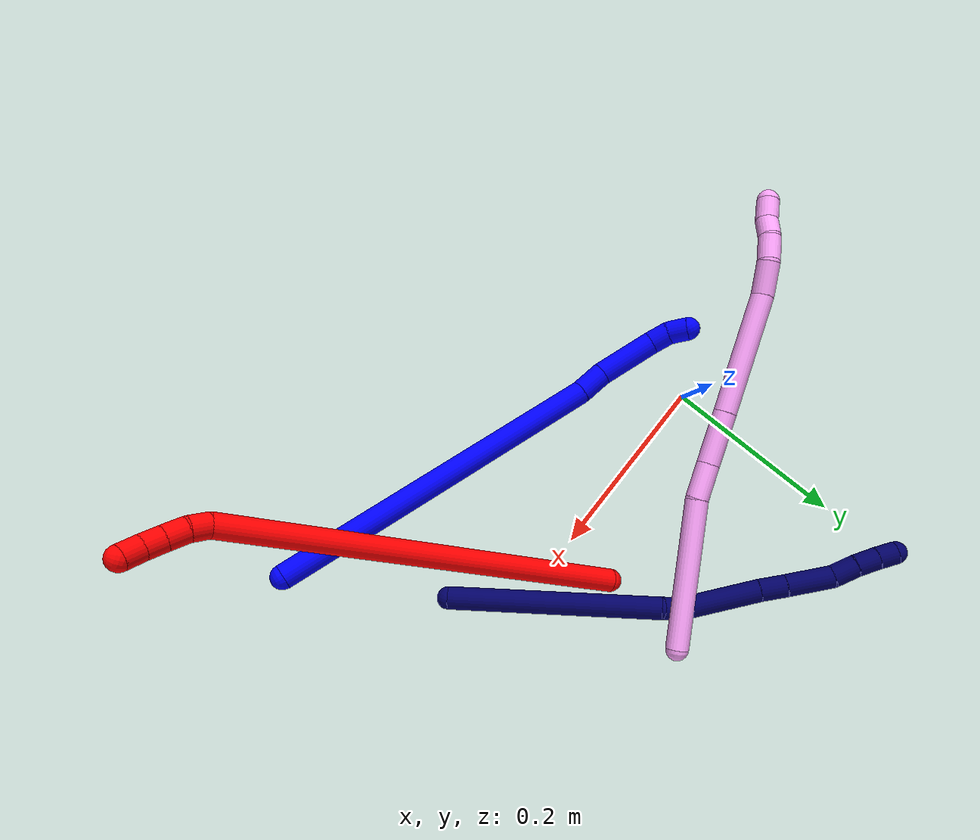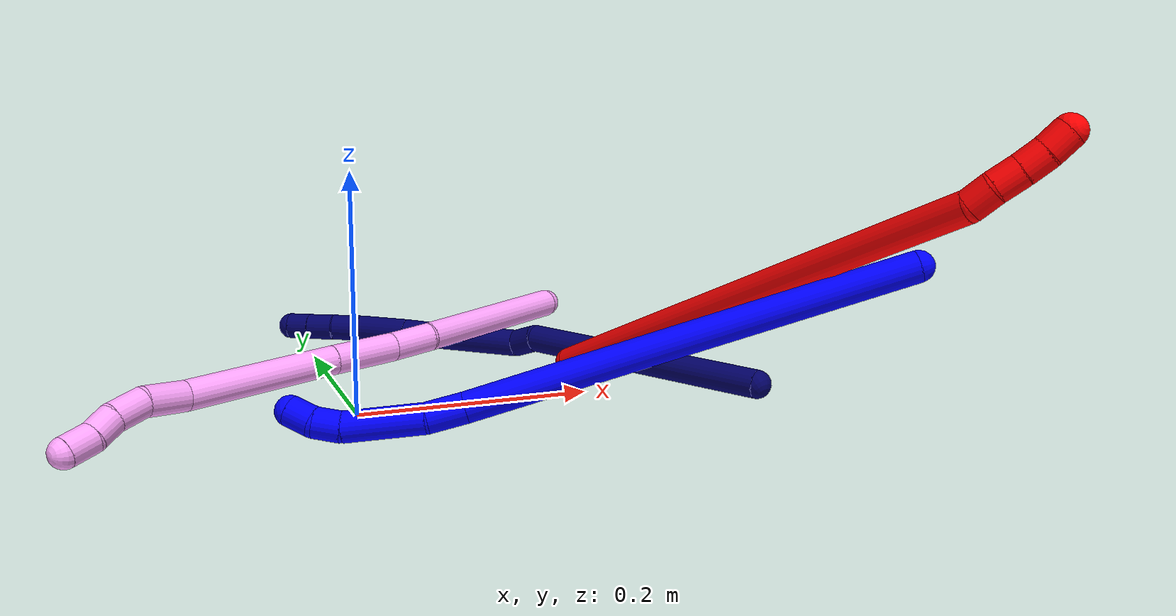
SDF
<sdf version="1.7">
 <world name="default">
  <model name="1">
   <static>0</static>
   <link name="1">
    <collision name="collision-cylinder-e_1_1_4">
     <pose>0.009086 -0.011047 -0.179325 3.08007 0.050527 1.37501</pose>
     <geometry><cylinder><radius>0.0125</radius><length>0.359789</length></cylinder></geometry>
     <surface>
      <friction><ode><mu>1.16</mu><mu2>1.16</mu2><slip1>0</slip1><slip2>0</slip2></ode></friction>
      <contact><ode><kp>1e+06</kp><kd>1</kd><max_vel>0</max_vel><min_depth>0.001</min_depth></ode></contact>
     </surface>
    </collision>
    <visual name="visual-cylinder-e_1_1_4">
     <pose>0.009086 -0.011047 -0.179325 3.08007 0.050527 1.37501</pose>
     <geometry><cylinder><radius>0.0125</radius><length>0.359789</length></cylinder></geometry>
     <material><ambient>0 0 1 1</ambient></material>
    </visual>
    <collision name="collision-cylinder-e_2_4_5">
     <pose>0.016795 -0.024653 -0.374058 2.97701 -0.087926 -0.979956</pose>
     <geometry><cylinder><radius>0.0125</radius><length>0.031358</length></cylinder></geometry>
     <surface>
      <friction><ode><mu>1.16</mu><mu2>1.16</mu2><slip1>0</slip1><slip2>0</slip2></ode></friction>
      <contact><ode><kp>1e+06</kp><kd>1</kd><max_vel>0</max_vel><min_depth>0.001</min_depth></ode></contact>
     </surface>
    </collision>
    <visual name="visual-cylinder-e_2_4_5">
     <pose>0.016795 -0.024653 -0.374058 2.97701 -0.087926 -0.979956</pose>
     <geometry><cylinder><radius>0.0125</radius><length>0.031358</length></cylinder></geometry>
     <material><ambient>0 0 1 1</ambient></material>
    </visual>
    <collision name="collision-cylinder-e_3_5_6">
     <pose>0.011203 -0.026225 -0.42165 -3.11094 -0.130162 2.67957</pose>
     <geometry><cylinder><radius>0.0125</radius><length>0.064948</length></cylinder></geometry>
     <surface>
      <friction><ode><mu>1.16</mu><mu2>1.16</mu2><slip1>0</slip1><slip2>0</slip2></ode></friction>
      <contact><ode><kp>1e+06</kp><kd>1</kd><max_vel>0</max_vel><min_depth>0.001</min_depth></ode></contact>
     </surface>
    </collision>
    <visual name="visual-cylinder-e_3_5_6">
     <pose>0.011203 -0.026225 -0.42165 -3.11094 -0.130162 2.67957</pose>
     <geometry><cylinder><radius>0.0125</radius><length>0.064948</length></cylinder></geometry>
     <material><ambient>0 0 1 1</ambient></material>
    </visual>
    <collision name="collision-cylinder-e_4_6_7">
     <pose>0.003357 -0.023067 -0.464026 -2.93167 -0.335303 2.02802</pose>
     <geometry><cylinder><radius>0.0125</radius><length>0.02207</length></cylinder></geometry>
     <surface>
      <friction><ode><mu>1.16</mu><mu2>1.16</mu2><slip1>0</slip1><slip2>0</slip2></ode></friction>
      <contact><ode><kp>1e+06</kp><kd>1</kd><max_vel>0</max_vel><min_depth>0.001</min_depth></ode></contact>
     </surface>
    </collision>
    <visual name="visual-cylinder-e_4_6_7">
     <pose>0.003357 -0.023067 -0.464026 -2.93167 -0.335303 2.02802</pose>
     <geometry><cylinder><radius>0.0125</radius><length>0.02207</length></cylinder></geometry>
     <material><ambient>0 0 1 1</ambient></material>
    </visual>
    <collision name="collision-cylinder-e_5_7_2">
     <pose>-0.003703 -0.015152 -0.482846 -2.55432 -0.319427 0.978979</pose>
     <geometry><cylinder><radius>0.0125</radius><length>0.021833</length></cylinder></geometry>
     <surface>
      <friction><ode><mu>1.16</mu><mu2>1.16</mu2><slip1>0</slip1><slip2>0</slip2></ode></friction>
      <contact><ode><kp>1e+06</kp><kd>1</kd><max_vel>0</max_vel><min_depth>0.001</min_depth></ode></contact>
     </surface>
    </collision>
    <visual name="visual-cylinder-e_5_7_2">
     <pose>-0.003703 -0.015152 -0.482846 -2.55432 -0.319427 0.978979</pose>
     <geometry><cylinder><radius>0.0125</radius><length>0.021833</length></cylinder></geometry>
     <material><ambient>0 0 1 1</ambient></material>
    </visual>
    <collision name="collision-sphere-2">
     <pose>-0.007131 -0.00941 -0.491474 0 -0 0</pose>
     <geometry><sphere><radius>0.0125</radius></sphere></geometry>
     <surface>
      <friction><ode><mu>1.16</mu><mu2>1.16</mu2><slip1>0</slip1><slip2>0</slip2></ode></friction>
      <contact><ode><kp>1e+06</kp><kd>1</kd><max_vel>0</max_vel><min_depth>0.001</min_depth></ode></contact>
     </surface>
    </collision>
    <visual name="visual-sphere-2">
     <pose>-0.007131 -0.00941 -0.491474 0 -0 0</pose>
     <geometry><sphere><radius>0.0125</radius></sphere></geometry>
     <material><ambient>0 0 1 1</ambient></material>
    </visual>
    <collision name="collision-sphere-7">
     <pose>-0.000275 -0.020895 -0.474218 0 -0 0</pose>
     <geometry><sphere><radius>0.0125</radius></sphere></geometry>
     <surface>
      <friction><ode><mu>1.16</mu><mu2>1.16</mu2><slip1>0</slip1><slip2>0</slip2></ode></friction>
      <contact><ode><kp>1e+06</kp><kd>1</kd><max_vel>0</max_vel><min_depth>0.001</min_depth></ode></contact>
     </surface>
    </collision>
    <visual name="visual-sphere-7">
     <pose>-0.000275 -0.020895 -0.474218 0 -0 0</pose>
     <geometry><sphere><radius>0.0125</radius></sphere></geometry>
     <material><ambient>0 0 1 1</ambient></material>
    </visual>
    <collision name="collision-sphere-6">
     <pose>0.006988 -0.025238 -0.453834 0 -0 0</pose>
     <geometry><sphere><radius>0.0125</radius></sphere></geometry>
     <surface>
      <friction><ode><mu>1.16</mu><mu2>1.16</mu2><slip1>0</slip1><slip2>0</slip2></ode></friction>
      <contact><ode><kp>1e+06</kp><kd>1</kd><max_vel>0</max_vel><min_depth>0.001</min_depth></ode></contact>
     </surface>
    </collision>
    <visual name="visual-sphere-6">
     <pose>0.006988 -0.025238 -0.453834 0 -0 0</pose>
     <geometry><sphere><radius>0.0125</radius></sphere></geometry>
     <material><ambient>0 0 1 1</ambient></material>
    </visual>
    <collision name="collision-sphere-5">
     <pose>0.015418 -0.027212 -0.389466 0 -0 0</pose>
     <geometry><sphere><radius>0.0125</radius></sphere></geometry>
     <surface>
      <friction><ode><mu>1.16</mu><mu2>1.16</mu2><slip1>0</slip1><slip2>0</slip2></ode></friction>
      <contact><ode><kp>1e+06</kp><kd>1</kd><max_vel>0</max_vel><min_depth>0.001</min_depth></ode></contact>
     </surface>
    </collision>
    <visual name="visual-sphere-5">
     <pose>0.015418 -0.027212 -0.389466 0 -0 0</pose>
     <geometry><sphere><radius>0.0125</radius></sphere></geometry>
     <material><ambient>0 0 1 1</ambient></material>
    </visual>
    <collision name="collision-sphere-1">
     <geometry><sphere><radius>0.0125</radius></sphere></geometry>
     <surface>
      <friction><ode><mu>1.16</mu><mu2>1.16</mu2><slip1>0</slip1><slip2>0</slip2></ode></friction>
      <contact><ode><kp>1e+06</kp><kd>1</kd><max_vel>0</max_vel><min_depth>0.001</min_depth></ode></contact>
     </surface>
    </collision>
    <visual name="visual-sphere-1">
     <geometry><sphere><radius>0.0125</radius></sphere></geometry>
     <material><ambient>0 0 1 1</ambient></material>
    </visual>
    <collision name="collision-sphere-4">
     <pose>0.018171 -0.022094 -0.35865 0 -0 0</pose>
     <geometry><sphere><radius>0.0125</radius></sphere></geometry>
     <surface>
      <friction><ode><mu>1.16</mu><mu2>1.16</mu2><slip1>0</slip1><slip2>0</slip2></ode></friction>
      <contact><ode><kp>1e+06</kp><kd>1</kd><max_vel>0</max_vel><min_depth>0.001</min_depth></ode></contact>
     </surface>
    </collision>
    <visual name="visual-sphere-4">
     <pose>0.018171 -0.022094 -0.35865 0 -0 0</pose>
     <geometry><sphere><radius>0.0125</radius></sphere></geometry>
     <material><ambient>0 0 1 1</ambient></material>
    </visual>
    <inertial>
     <pose>0.009033 -0.014582 -0.248836 0 -0 0</pose>
     <mass>0.5</mass>
     <inertia><ixx>0.004563</ixx><ixy>0</ixy><ixz>0</ixz><iyy>0.003103</iyy><iyz>0</iyz><izz>7e-06</izz></inertia>
    </inertial>
   </link>
   <pose>0.388502 -0.206748 0.135936 1.07061 1.0546 0.749108</pose>
  </model>
  <model name="2">
   <static>0</static>
   <link name="2">
    <collision name="collision-cylinder-e_1_1_4">
     <pose>0.004488 -0.027107 0.20722 0.130074 0.02147 0.001398</pose>
     <geometry><cylinder><radius>0.0125</radius><length>0.418067</length></cylinder></geometry>
     <surface>
      <friction><ode><mu>1.16</mu><mu2>1.16</mu2><slip1>0</slip1><slip2>0</slip2></ode></friction>
      <contact><ode><kp>1e+06</kp><kd>1</kd><max_vel>0</max_vel><min_depth>0.001</min_depth></ode></contact>
     </surface>
    </collision>
    <visual name="visual-cylinder-e_1_1_4">
     <pose>0.004488 -0.027107 0.20722 0.130074 0.02147 0.001398</pose>
     <geometry><cylinder><radius>0.0125</radius><length>0.418067</length></cylinder></geometry>
     <material><ambient>1 0 0 1</ambient></material>
    </visual>
    <collision name="collision-cylinder-e_2_4_5">
     <pose>0.012888 -0.057069 0.423454 0.306754 0.392372 0.061428</pose>
     <geometry><cylinder><radius>0.0125</radius><length>0.020465</length></cylinder></geometry>
     <surface>
      <friction><ode><mu>1.16</mu><mu2>1.16</mu2><slip1>0</slip1><slip2>0</slip2></ode></friction>
      <contact><ode><kp>1e+06</kp><kd>1</kd><max_vel>0</max_vel><min_depth>0.001</min_depth></ode></contact>
     </surface>
    </collision>
    <visual name="visual-cylinder-e_2_4_5">
     <pose>0.012888 -0.057069 0.423454 0.306754 0.392372 0.061428</pose>
     <geometry><cylinder><radius>0.0125</radius><length>0.020465</length></cylinder></geometry>
     <material><ambient>1 0 0 1</ambient></material>
    </visual>
    <collision name="collision-cylinder-e_3_5_6">
     <pose>0.021003 -0.064929 0.440774 0.542213 0.408927 0.115145</pose>
     <geometry><cylinder><radius>0.0125</radius><length>0.021139</length></cylinder></geometry>
     <surface>
      <friction><ode><mu>1.16</mu><mu2>1.16</mu2><slip1>0</slip1><slip2>0</slip2></ode></friction>
      <contact><ode><kp>1e+06</kp><kd>1</kd><max_vel>0</max_vel><min_depth>0.001</min_depth></ode></contact>
     </surface>
    </collision>
    <visual name="visual-cylinder-e_3_5_6">
     <pose>0.021003 -0.064929 0.440774 0.542213 0.408927 0.115145</pose>
     <geometry><cylinder><radius>0.0125</radius><length>0.021139</length></cylinder></geometry>
     <material><ambient>1 0 0 1</ambient></material>
    </visual>
    <collision name="collision-cylinder-e_4_6_7">
     <pose>0.029694 -0.074504 0.456784 0.53561 0.46452 0.129624</pose>
     <geometry><cylinder><radius>0.0125</radius><length>0.020038</length></cylinder></geometry>
     <surface>
      <friction><ode><mu>1.16</mu><mu2>1.16</mu2><slip1>0</slip1><slip2>0</slip2></ode></friction>
      <contact><ode><kp>1e+06</kp><kd>1</kd><max_vel>0</max_vel><min_depth>0.001</min_depth></ode></contact>
     </surface>
    </collision>
    <visual name="visual-cylinder-e_4_6_7">
     <pose>0.029694 -0.074504 0.456784 0.53561 0.46452 0.129624</pose>
     <geometry><cylinder><radius>0.0125</radius><length>0.020038</length></cylinder></geometry>
     <material><ambient>1 0 0 1</ambient></material>
    </visual>
    <collision name="collision-cylinder-e_5_7_2">
     <pose>0.039798 -0.083206 0.471858 0.510647 0.586536 0.157318</pose>
     <geometry><cylinder><radius>0.0125</radius><length>0.020291</length></cylinder></geometry>
     <surface>
      <friction><ode><mu>1.16</mu><mu2>1.16</mu2><slip1>0</slip1><slip2>0</slip2></ode></friction>
      <contact><ode><kp>1e+06</kp><kd>1</kd><max_vel>0</max_vel><min_depth>0.001</min_depth></ode></contact>
     </surface>
    </collision>
    <visual name="visual-cylinder-e_5_7_2">
     <pose>0.039798 -0.083206 0.471858 0.510647 0.586536 0.157318</pose>
     <geometry><cylinder><radius>0.0125</radius><length>0.020291</length></cylinder></geometry>
     <material><ambient>1 0 0 1</ambient></material>
    </visual>
    <collision name="collision-sphere-2">
     <pose>0.045413 -0.087336 0.47923 0 -0 0</pose>
     <geometry><sphere><radius>0.0125</radius></sphere></geometry>
     <surface>
      <friction><ode><mu>1.16</mu><mu2>1.16</mu2><slip1>0</slip1><slip2>0</slip2></ode></friction>
      <contact><ode><kp>1e+06</kp><kd>1</kd><max_vel>0</max_vel><min_depth>0.001</min_depth></ode></contact>
     </surface>
    </collision>
    <visual name="visual-sphere-2">
     <pose>0.045413 -0.087336 0.47923 0 -0 0</pose>
     <geometry><sphere><radius>0.0125</radius></sphere></geometry>
     <material><ambient>1 0 0 1</ambient></material>
    </visual>
    <collision name="collision-sphere-7">
     <pose>0.034183 -0.079076 0.464486 0 -0 0</pose>
     <geometry><sphere><radius>0.0125</radius></sphere></geometry>
     <surface>
      <friction><ode><mu>1.16</mu><mu2>1.16</mu2><slip1>0</slip1><slip2>0</slip2></ode></friction>
      <contact><ode><kp>1e+06</kp><kd>1</kd><max_vel>0</max_vel><min_depth>0.001</min_depth></ode></contact>
     </surface>
    </collision>
    <visual name="visual-sphere-7">
     <pose>0.034183 -0.079076 0.464486 0 -0 0</pose>
     <geometry><sphere><radius>0.0125</radius></sphere></geometry>
     <material><ambient>1 0 0 1</ambient></material>
    </visual>
    <collision name="collision-sphere-6">
     <pose>0.025206 -0.069933 0.449081 0 -0 0</pose>
     <geometry><sphere><radius>0.0125</radius></sphere></geometry>
     <surface>
      <friction><ode><mu>1.16</mu><mu2>1.16</mu2><slip1>0</slip1><slip2>0</slip2></ode></friction>
      <contact><ode><kp>1e+06</kp><kd>1</kd><max_vel>0</max_vel><min_depth>0.001</min_depth></ode></contact>
     </surface>
    </collision>
    <visual name="visual-sphere-6">
     <pose>0.025206 -0.069933 0.449081 0 -0 0</pose>
     <geometry><sphere><radius>0.0125</radius></sphere></geometry>
     <material><ambient>1 0 0 1</ambient></material>
    </visual>
    <collision name="collision-sphere-5">
     <pose>0.0168 -0.059924 0.432467 0 -0 0</pose>
     <geometry><sphere><radius>0.0125</radius></sphere></geometry>
     <surface>
      <friction><ode><mu>1.16</mu><mu2>1.16</mu2><slip1>0</slip1><slip2>0</slip2></ode></friction>
      <contact><ode><kp>1e+06</kp><kd>1</kd><max_vel>0</max_vel><min_depth>0.001</min_depth></ode></contact>
     </surface>
    </collision>
    <visual name="visual-sphere-5">
     <pose>0.0168 -0.059924 0.432467 0 -0 0</pose>
     <geometry><sphere><radius>0.0125</radius></sphere></geometry>
     <material><ambient>1 0 0 1</ambient></material>
    </visual>
    <collision name="collision-sphere-1">
     <geometry><sphere><radius>0.0125</radius></sphere></geometry>
     <surface>
      <friction><ode><mu>1.16</mu><mu2>1.16</mu2><slip1>0</slip1><slip2>0</slip2></ode></friction>
      <contact><ode><kp>1e+06</kp><kd>1</kd><max_vel>0</max_vel><min_depth>0.001</min_depth></ode></contact>
     </surface>
    </collision>
    <visual name="visual-sphere-1">
     <geometry><sphere><radius>0.0125</radius></sphere></geometry>
     <material><ambient>1 0 0 1</ambient></material>
    </visual>
    <collision name="collision-sphere-4">
     <pose>0.008975 -0.054214 0.41444 0 -0 0</pose>
     <geometry><sphere><radius>0.0125</radius></sphere></geometry>
     <surface>
      <friction><ode><mu>1.16</mu><mu2>1.16</mu2><slip1>0</slip1><slip2>0</slip2></ode></friction>
      <contact><ode><kp>1e+06</kp><kd>1</kd><max_vel>0</max_vel><min_depth>0.001</min_depth></ode></contact>
     </surface>
    </collision>
    <visual name="visual-sphere-4">
     <pose>0.008975 -0.054214 0.41444 0 -0 0</pose>
     <geometry><sphere><radius>0.0125</radius></sphere></geometry>
     <material><ambient>1 0 0 1</ambient></material>
    </visual>
    <inertial>
     <pose>0.007973 -0.034109 0.246686 0 -0 0</pose>
     <mass>0.5</mass>
     <inertia>
      <ixx>0.006122</ixx>
      <ixy>0</ixy>
      <ixz>0</ixz>
      <iyy>0.006062</iyy>
      <iyz>0</iyz>
      <izz>0.000698</izz>
     </inertia>
    </inertial>
   </link>
   <pose>0.208337 0.059634 0.011497 0.478392 -1.04318 1.34415</pose>
  </model>
  <model name="4">
   <static>0</static>
   <link name="4">
    <collision name="collision-cylinder-e_1_1_4">
     <pose>0.002669 -0.002796 -0.07962 3.10649 0.033491 1.52394</pose>
     <geometry><cylinder><radius>0.0125</radius><length>0.159427</length></cylinder></geometry>
     <surface>
      <friction><ode><mu>1.16</mu><mu2>1.16</mu2><slip1>0</slip1><slip2>0</slip2></ode></friction>
      <contact><ode><kp>1e+06</kp><kd>1</kd><max_vel>0</max_vel><min_depth>0.001</min_depth></ode></contact>
     </surface>
    </collision>
    <visual name="visual-cylinder-e_1_1_4">
     <pose>0.002669 -0.002796 -0.07962 3.10649 0.033491 1.52394</pose>
     <geometry><cylinder><radius>0.0125</radius><length>0.159427</length></cylinder></geometry>
     <material><ambient>1 0.65098 0.996078 1</ambient></material>
    </visual>
    <collision name="collision-cylinder-e_2_4_5">
     <pose>0.009606 -0.00711 -0.178249 3.06186 0.220132 2.44882</pose>
     <geometry><cylinder><radius>0.0125</radius><length>0.039084</length></cylinder></geometry>
     <surface>
      <friction><ode><mu>1.16</mu><mu2>1.16</mu2><slip1>0</slip1><slip2>0</slip2></ode></friction>
      <contact><ode><kp>1e+06</kp><kd>1</kd><max_vel>0</max_vel><min_depth>0.001</min_depth></ode></contact>
     </surface>
    </collision>
    <visual name="visual-cylinder-e_2_4_5">
     <pose>0.009606 -0.00711 -0.178249 3.06186 0.220132 2.44882</pose>
     <geometry><cylinder><radius>0.0125</radius><length>0.039084</length></cylinder></geometry>
     <material><ambient>1 0.65098 0.996078 1</ambient></material>
    </visual>
    <collision name="collision-cylinder-e_3_5_6">
     <pose>0.020219 -0.009712 -0.225588 3.10338 0.220242 2.79937</pose>
     <geometry><cylinder><radius>0.0125</radius><length>0.058102</length></cylinder></geometry>
     <surface>
      <friction><ode><mu>1.16</mu><mu2>1.16</mu2><slip1>0</slip1><slip2>0</slip2></ode></friction>
      <contact><ode><kp>1e+06</kp><kd>1</kd><max_vel>0</max_vel><min_depth>0.001</min_depth></ode></contact>
     </surface>
    </collision>
    <visual name="visual-cylinder-e_3_5_6">
     <pose>0.020219 -0.009712 -0.225588 3.10338 0.220242 2.79937</pose>
     <geometry><cylinder><radius>0.0125</radius><length>0.058102</length></cylinder></geometry>
     <material><ambient>1 0.65098 0.996078 1</ambient></material>
    </visual>
    <collision name="collision-cylinder-e_4_6_7">
     <pose>0.040761 -0.014198 -0.318626 3.08905 0.215653 2.66526</pose>
     <geometry><cylinder><radius>0.0125</radius><length>0.132671</length></cylinder></geometry>
     <surface>
      <friction><ode><mu>1.16</mu><mu2>1.16</mu2><slip1>0</slip1><slip2>0</slip2></ode></friction>
      <contact><ode><kp>1e+06</kp><kd>1</kd><max_vel>0</max_vel><min_depth>0.001</min_depth></ode></contact>
     </surface>
    </collision>
    <visual name="visual-cylinder-e_4_6_7">
     <pose>0.040761 -0.014198 -0.318626 3.08905 0.215653 2.66526</pose>
     <geometry><cylinder><radius>0.0125</radius><length>0.132671</length></cylinder></geometry>
     <material><ambient>1 0.65098 0.996078 1</ambient></material>
    </visual>
    <collision name="collision-cylinder-e_5_7_8">
     <pose>0.056019 -0.016122 -0.401655 -3.06096 0.057804 -1.24369</pose>
     <geometry><cylinder><radius>0.0125</radius><length>0.03682</length></cylinder></geometry>
     <surface>
      <friction><ode><mu>1.16</mu><mu2>1.16</mu2><slip1>0</slip1><slip2>0</slip2></ode></friction>
      <contact><ode><kp>1e+06</kp><kd>1</kd><max_vel>0</max_vel><min_depth>0.001</min_depth></ode></contact>
     </surface>
    </collision>
    <visual name="visual-cylinder-e_5_7_8">
     <pose>0.056019 -0.016122 -0.401655 -3.06096 0.057804 -1.24369</pose>
     <geometry><cylinder><radius>0.0125</radius><length>0.03682</length></cylinder></geometry>
     <material><ambient>1 0.65098 0.996078 1</ambient></material>
    </visual>
    <collision name="collision-cylinder-e_6_8_9">
     <pose>0.057072 -0.017878 -0.433689 2.90984 -0.00075 -0.006447</pose>
     <geometry><cylinder><radius>0.0125</radius><length>0.028182</length></cylinder></geometry>
     <surface>
      <friction><ode><mu>1.16</mu><mu2>1.16</mu2><slip1>0</slip1><slip2>0</slip2></ode></friction>
      <contact><ode><kp>1e+06</kp><kd>1</kd><max_vel>0</max_vel><min_depth>0.001</min_depth></ode></contact>
     </surface>
    </collision>
    <visual name="visual-cylinder-e_6_8_9">
     <pose>0.057072 -0.017878 -0.433689 2.90984 -0.00075 -0.006447</pose>
     <geometry><cylinder><radius>0.0125</radius><length>0.028182</length></cylinder></geometry>
     <material><ambient>1 0.65098 0.996078 1</ambient></material>
    </visual>
    <collision name="collision-cylinder-e_7_9_10">
     <pose>0.055587 -0.025821 -0.457144 2.69147 -0.135496 -0.576249</pose>
     <geometry><cylinder><radius>0.0125</radius><length>0.021839</length></cylinder></geometry>
     <surface>
      <friction><ode><mu>1.16</mu><mu2>1.16</mu2><slip1>0</slip1><slip2>0</slip2></ode></friction>
      <contact><ode><kp>1e+06</kp><kd>1</kd><max_vel>0</max_vel><min_depth>0.001</min_depth></ode></contact>
     </surface>
    </collision>
    <visual name="visual-cylinder-e_7_9_10">
     <pose>0.055587 -0.025821 -0.457144 2.69147 -0.135496 -0.576249</pose>
     <geometry><cylinder><radius>0.0125</radius><length>0.021839</length></cylinder></geometry>
     <material><ambient>1 0.65098 0.996078 1</ambient></material>
    </visual>
    <collision name="collision-cylinder-e_8_10_2">
     <pose>0.054379 -0.033477 -0.478451 2.89193 0.022412 0.178142</pose>
     <geometry><cylinder><radius>0.0125</radius><length>0.023876</length></cylinder></geometry>
     <surface>
      <friction><ode><mu>1.16</mu><mu2>1.16</mu2><slip1>0</slip1><slip2>0</slip2></ode></friction>
      <contact><ode><kp>1e+06</kp><kd>1</kd><max_vel>0</max_vel><min_depth>0.001</min_depth></ode></contact>
     </surface>
    </collision>
    <visual name="visual-cylinder-e_8_10_2">
     <pose>0.054379 -0.033477 -0.478451 2.89193 0.022412 0.178142</pose>
     <geometry><cylinder><radius>0.0125</radius><length>0.023876</length></cylinder></geometry>
     <material><ambient>1 0.65098 0.996078 1</ambient></material>
    </visual>
    <collision name="collision-sphere-2">
     <pose>0.054647 -0.036426 -0.490015 0 -0 0</pose>
     <geometry><sphere><radius>0.0125</radius></sphere></geometry>
     <surface>
      <friction><ode><mu>1.16</mu><mu2>1.16</mu2><slip1>0</slip1><slip2>0</slip2></ode></friction>
      <contact><ode><kp>1e+06</kp><kd>1</kd><max_vel>0</max_vel><min_depth>0.001</min_depth></ode></contact>
     </surface>
    </collision>
    <visual name="visual-sphere-2">
     <pose>0.054647 -0.036426 -0.490015 0 -0 0</pose>
     <geometry><sphere><radius>0.0125</radius></sphere></geometry>
     <material><ambient>1 0.65098 0.996078 1</ambient></material>
    </visual>
    <collision name="collision-sphere-10">
     <pose>0.054112 -0.030528 -0.466886 0 -0 0</pose>
     <geometry><sphere><radius>0.0125</radius></sphere></geometry>
     <surface>
      <friction><ode><mu>1.16</mu><mu2>1.16</mu2><slip1>0</slip1><slip2>0</slip2></ode></friction>
      <contact><ode><kp>1e+06</kp><kd>1</kd><max_vel>0</max_vel><min_depth>0.001</min_depth></ode></contact>
     </surface>
    </collision>
    <visual name="visual-sphere-10">
     <pose>0.054112 -0.030528 -0.466886 0 -0 0</pose>
     <geometry><sphere><radius>0.0125</radius></sphere></geometry>
     <material><ambient>1 0.65098 0.996078 1</ambient></material>
    </visual>
    <collision name="collision-sphere-9">
     <pose>0.057062 -0.021114 -0.447403 0 -0 0</pose>
     <geometry><sphere><radius>0.0125</radius></sphere></geometry>
     <surface>
      <friction><ode><mu>1.16</mu><mu2>1.16</mu2><slip1>0</slip1><slip2>0</slip2></ode></friction>
      <contact><ode><kp>1e+06</kp><kd>1</kd><max_vel>0</max_vel><min_depth>0.001</min_depth></ode></contact>
     </surface>
    </collision>
    <visual name="visual-sphere-9">
     <pose>0.057062 -0.021114 -0.447403 0 -0 0</pose>
     <geometry><sphere><radius>0.0125</radius></sphere></geometry>
     <material><ambient>1 0.65098 0.996078 1</ambient></material>
    </visual>
    <collision name="collision-sphere-4">
     <pose>0.005338 -0.005591 -0.159239 0 -0 0</pose>
     <geometry><sphere><radius>0.0125</radius></sphere></geometry>
     <surface>
      <friction><ode><mu>1.16</mu><mu2>1.16</mu2><slip1>0</slip1><slip2>0</slip2></ode></friction>
      <contact><ode><kp>1e+06</kp><kd>1</kd><max_vel>0</max_vel><min_depth>0.001</min_depth></ode></contact>
     </surface>
    </collision>
    <visual name="visual-sphere-4">
     <pose>0.005338 -0.005591 -0.159239 0 -0 0</pose>
     <geometry><sphere><radius>0.0125</radius></sphere></geometry>
     <material><ambient>1 0.65098 0.996078 1</ambient></material>
    </visual>
    <collision name="collision-sphere-1">
     <geometry><sphere><radius>0.0125</radius></sphere></geometry>
     <surface>
      <friction><ode><mu>1.16</mu><mu2>1.16</mu2><slip1>0</slip1><slip2>0</slip2></ode></friction>
      <contact><ode><kp>1e+06</kp><kd>1</kd><max_vel>0</max_vel><min_depth>0.001</min_depth></ode></contact>
     </surface>
    </collision>
    <visual name="visual-sphere-1">
     <geometry><sphere><radius>0.0125</radius></sphere></geometry>
     <material><ambient>1 0.65098 0.996078 1</ambient></material>
    </visual>
    <collision name="collision-sphere-8">
     <pose>0.057083 -0.014641 -0.419974 0 -0 0</pose>
     <geometry><sphere><radius>0.0125</radius></sphere></geometry>
     <surface>
      <friction><ode><mu>1.16</mu><mu2>1.16</mu2><slip1>0</slip1><slip2>0</slip2></ode></friction>
      <contact><ode><kp>1e+06</kp><kd>1</kd><max_vel>0</max_vel><min_depth>0.001</min_depth></ode></contact>
     </surface>
    </collision>
    <visual name="visual-sphere-8">
     <pose>0.057083 -0.014641 -0.419974 0 -0 0</pose>
     <geometry><sphere><radius>0.0125</radius></sphere></geometry>
     <material><ambient>1 0.65098 0.996078 1</ambient></material>
    </visual>
    <collision name="collision-sphere-5">
     <pose>0.013873 -0.008629 -0.197259 0 -0 0</pose>
     <geometry><sphere><radius>0.0125</radius></sphere></geometry>
     <surface>
      <friction><ode><mu>1.16</mu><mu2>1.16</mu2><slip1>0</slip1><slip2>0</slip2></ode></friction>
      <contact><ode><kp>1e+06</kp><kd>1</kd><max_vel>0</max_vel><min_depth>0.001</min_depth></ode></contact>
     </surface>
    </collision>
    <visual name="visual-sphere-5">
     <pose>0.013873 -0.008629 -0.197259 0 -0 0</pose>
     <geometry><sphere><radius>0.0125</radius></sphere></geometry>
     <material><ambient>1 0.65098 0.996078 1</ambient></material>
    </visual>
    <collision name="collision-sphere-6">
     <pose>0.026566 -0.010795 -0.253916 0 -0 0</pose>
     <geometry><sphere><radius>0.0125</radius></sphere></geometry>
     <surface>
      <friction><ode><mu>1.16</mu><mu2>1.16</mu2><slip1>0</slip1><slip2>0</slip2></ode></friction>
      <contact><ode><kp>1e+06</kp><kd>1</kd><max_vel>0</max_vel><min_depth>0.001</min_depth></ode></contact>
     </surface>
    </collision>
    <visual name="visual-sphere-6">
     <pose>0.026566 -0.010795 -0.253916 0 -0 0</pose>
     <geometry><sphere><radius>0.0125</radius></sphere></geometry>
     <material><ambient>1 0.65098 0.996078 1</ambient></material>
    </visual>
    <collision name="collision-sphere-7">
     <pose>0.054956 -0.017602 -0.383335 0 -0 0</pose>
     <geometry><sphere><radius>0.0125</radius></sphere></geometry>
     <surface>
      <friction><ode><mu>1.16</mu><mu2>1.16</mu2><slip1>0</slip1><slip2>0</slip2></ode></friction>
      <contact><ode><kp>1e+06</kp><kd>1</kd><max_vel>0</max_vel><min_depth>0.001</min_depth></ode></contact>
     </surface>
    </collision>
    <visual name="visual-sphere-7">
     <pose>0.054956 -0.017602 -0.383335 0 -0 0</pose>
     <geometry><sphere><radius>0.0125</radius></sphere></geometry>
     <material><ambient>1 0.65098 0.996078 1</ambient></material>
    </visual>
    <inertial>
     <pose>0.027134 -0.011264 -0.246915 0 -0 0</pose>
     <mass>0.5</mass>
     <inertia>
      <ixx>0.00027</ixx>
      <ixy>0</ixy>
      <ixz>0</ixz>
      <iyy>0.000612</iyy>
      <iyz>0</iyz>
      <izz>-7.3e-05</izz>
     </inertia>
    </inertial>
   </link>
   <pose>0.219652 0.155798 0.04583 1.58069 0.03711 2.1262</pose>
  </model>
  <model name="7">
   <static>0</static>
   <link name="7">
    <collision name="collision-cylinder-e_1_1_4">
     <pose>-0.06093 0.051729 -0.084412 -2.5918 -0.551701 1.57445</pose>
     <geometry><cylinder><radius>0.0125</radius><length>0.232496</length></cylinder></geometry>
     <surface>
      <friction><ode><mu>1.16</mu><mu2>1.16</mu2><slip1>0</slip1><slip2>0</slip2></ode></friction>
      <contact><ode><kp>1e+06</kp><kd>1</kd><max_vel>0</max_vel><min_depth>0.001</min_depth></ode></contact>
     </surface>
    </collision>
    <visual name="visual-cylinder-e_1_1_4">
     <pose>-0.06093 0.051729 -0.084412 -2.5918 -0.551701 1.57445</pose>
     <geometry><cylinder><radius>0.0125</radius><length>0.232496</length></cylinder></geometry>
     <material><ambient>0.003922 0 0.403922 1</ambient></material>
    </visual>
    <collision name="collision-cylinder-e_2_4_5">
     <pose>-0.131406 0.109066 -0.174333 -2.34729 -0.881793 1.68832</pose>
     <geometry><cylinder><radius>0.0125</radius><length>0.024734</length></cylinder></geometry>
     <surface>
      <friction><ode><mu>1.16</mu><mu2>1.16</mu2><slip1>0</slip1><slip2>0</slip2></ode></friction>
      <contact><ode><kp>1e+06</kp><kd>1</kd><max_vel>0</max_vel><min_depth>0.001</min_depth></ode></contact>
     </surface>
    </collision>
    <visual name="visual-cylinder-e_2_4_5">
     <pose>-0.131406 0.109066 -0.174333 -2.34729 -0.881793 1.68832</pose>
     <geometry><cylinder><radius>0.0125</radius><length>0.024734</length></cylinder></geometry>
     <material><ambient>0.003922 0 0.403922 1</ambient></material>
    </visual>
    <collision name="collision-cylinder-e_3_5_6">
     <pose>-0.158547 0.143947 -0.20691 -2.31708 -0.415629 0.898559</pose>
     <geometry><cylinder><radius>0.0125</radius><length>0.087156</length></cylinder></geometry>
     <surface>
      <friction><ode><mu>1.16</mu><mu2>1.16</mu2><slip1>0</slip1><slip2>0</slip2></ode></friction>
      <contact><ode><kp>1e+06</kp><kd>1</kd><max_vel>0</max_vel><min_depth>0.001</min_depth></ode></contact>
     </surface>
    </collision>
    <visual name="visual-cylinder-e_3_5_6">
     <pose>-0.158547 0.143947 -0.20691 -2.31708 -0.415629 0.898559</pose>
     <geometry><cylinder><radius>0.0125</radius><length>0.087156</length></cylinder></geometry>
     <material><ambient>0.003922 0 0.403922 1</ambient></material>
    </visual>
    <collision name="collision-cylinder-e_4_6_7">
     <pose>-0.182352 0.182409 -0.24346 -2.37186 -0.439529 1.00791</pose>
     <geometry><cylinder><radius>0.0125</radius><length>0.029186</length></cylinder></geometry>
     <surface>
      <friction><ode><mu>1.16</mu><mu2>1.16</mu2><slip1>0</slip1><slip2>0</slip2></ode></friction>
      <contact><ode><kp>1e+06</kp><kd>1</kd><max_vel>0</max_vel><min_depth>0.001</min_depth></ode></contact>
     </surface>
    </collision>
    <visual name="visual-cylinder-e_4_6_7">
     <pose>-0.182352 0.182409 -0.24346 -2.37186 -0.439529 1.00791</pose>
     <geometry><cylinder><radius>0.0125</radius><length>0.029186</length></cylinder></geometry>
     <material><ambient>0.003922 0 0.403922 1</ambient></material>
    </visual>
    <collision name="collision-cylinder-e_5_7_8">
     <pose>-0.200007 0.208354 -0.269194 -2.34095 -0.455925 1.00296</pose>
     <geometry><cylinder><radius>0.0125</radius><length>0.051991</length></cylinder></geometry>
     <surface>
      <friction><ode><mu>1.16</mu><mu2>1.16</mu2><slip1>0</slip1><slip2>0</slip2></ode></friction>
      <contact><ode><kp>1e+06</kp><kd>1</kd><max_vel>0</max_vel><min_depth>0.001</min_depth></ode></contact>
     </surface>
    </collision>
    <visual name="visual-cylinder-e_5_7_8">
     <pose>-0.200007 0.208354 -0.269194 -2.34095 -0.455925 1.00296</pose>
     <geometry><cylinder><radius>0.0125</radius><length>0.051991</length></cylinder></geometry>
     <material><ambient>0.003922 0 0.403922 1</ambient></material>
    </visual>
    <collision name="collision-cylinder-e_6_8_9">
     <pose>-0.215496 0.236332 -0.292738 -2.147 -0.293367 0.531507</pose>
     <geometry><cylinder><radius>0.0125</radius><length>0.027967</length></cylinder></geometry>
     <surface>
      <friction><ode><mu>1.16</mu><mu2>1.16</mu2><slip1>0</slip1><slip2>0</slip2></ode></friction>
      <contact><ode><kp>1e+06</kp><kd>1</kd><max_vel>0</max_vel><min_depth>0.001</min_depth></ode></contact>
     </surface>
    </collision>
    <visual name="visual-cylinder-e_6_8_9">
     <pose>-0.215496 0.236332 -0.292738 -2.147 -0.293367 0.531507</pose>
     <geometry><cylinder><radius>0.0125</radius><length>0.027967</length></cylinder></geometry>
     <material><ambient>0.003922 0 0.403922 1</ambient></material>
    </visual>
    <collision name="collision-cylinder-e_7_9_10">
     <pose>-0.224182 0.256944 -0.306959 -2.20654 -0.378686 0.725576</pose>
     <geometry><cylinder><radius>0.0125</radius><length>0.025112</length></cylinder></geometry>
     <surface>
      <friction><ode><mu>1.16</mu><mu2>1.16</mu2><slip1>0</slip1><slip2>0</slip2></ode></friction>
      <contact><ode><kp>1e+06</kp><kd>1</kd><max_vel>0</max_vel><min_depth>0.001</min_depth></ode></contact>
     </surface>
    </collision>
    <visual name="visual-cylinder-e_7_9_10">
     <pose>-0.224182 0.256944 -0.306959 -2.20654 -0.378686 0.725576</pose>
     <geometry><cylinder><radius>0.0125</radius><length>0.025112</length></cylinder></geometry>
     <material><ambient>0.003922 0 0.403922 1</ambient></material>
    </visual>
    <collision name="collision-cylinder-e_8_10_2">
     <pose>-0.233056 0.273983 -0.320015 -2.24618 -0.40755 0.812701</pose>
     <geometry><cylinder><radius>0.0125</radius><length>0.021357</length></cylinder></geometry>
     <surface>
      <friction><ode><mu>1.16</mu><mu2>1.16</mu2><slip1>0</slip1><slip2>0</slip2></ode></friction>
      <contact><ode><kp>1e+06</kp><kd>1</kd><max_vel>0</max_vel><min_depth>0.001</min_depth></ode></contact>
     </surface>
    </collision>
    <visual name="visual-cylinder-e_8_10_2">
     <pose>-0.233056 0.273983 -0.320015 -2.24618 -0.40755 0.812701</pose>
     <geometry><cylinder><radius>0.0125</radius><length>0.021357</length></cylinder></geometry>
     <material><ambient>0.003922 0 0.403922 1</ambient></material>
    </visual>
    <collision name="collision-sphere-2">
     <pose>-0.237289 0.281635 -0.326145 0 -0 0</pose>
     <geometry><sphere><radius>0.0125</radius></sphere></geometry>
     <surface>
      <friction><ode><mu>1.16</mu><mu2>1.16</mu2><slip1>0</slip1><slip2>0</slip2></ode></friction>
      <contact><ode><kp>1e+06</kp><kd>1</kd><max_vel>0</max_vel><min_depth>0.001</min_depth></ode></contact>
     </surface>
    </collision>
    <visual name="visual-sphere-2">
     <pose>-0.237289 0.281635 -0.326145 0 -0 0</pose>
     <geometry><sphere><radius>0.0125</radius></sphere></geometry>
     <material><ambient>0.003922 0 0.403922 1</ambient></material>
    </visual>
    <collision name="collision-sphere-10">
     <pose>-0.228824 0.266331 -0.313886 0 -0 0</pose>
     <geometry><sphere><radius>0.0125</radius></sphere></geometry>
     <surface>
      <friction><ode><mu>1.16</mu><mu2>1.16</mu2><slip1>0</slip1><slip2>0</slip2></ode></friction>
      <contact><ode><kp>1e+06</kp><kd>1</kd><max_vel>0</max_vel><min_depth>0.001</min_depth></ode></contact>
     </surface>
    </collision>
    <visual name="visual-sphere-10">
     <pose>-0.228824 0.266331 -0.313886 0 -0 0</pose>
     <geometry><sphere><radius>0.0125</radius></sphere></geometry>
     <material><ambient>0.003922 0 0.403922 1</ambient></material>
    </visual>
    <collision name="collision-sphere-9">
     <pose>-0.21954 0.247557 -0.300031 0 -0 0</pose>
     <geometry><sphere><radius>0.0125</radius></sphere></geometry>
     <surface>
      <friction><ode><mu>1.16</mu><mu2>1.16</mu2><slip1>0</slip1><slip2>0</slip2></ode></friction>
      <contact><ode><kp>1e+06</kp><kd>1</kd><max_vel>0</max_vel><min_depth>0.001</min_depth></ode></contact>
     </surface>
    </collision>
    <visual name="visual-sphere-9">
     <pose>-0.21954 0.247557 -0.300031 0 -0 0</pose>
     <geometry><sphere><radius>0.0125</radius></sphere></geometry>
     <material><ambient>0.003922 0 0.403922 1</ambient></material>
    </visual>
    <collision name="collision-sphere-4">
     <pose>-0.12186 0.103458 -0.168823 0 -0 0</pose>
     <geometry><sphere><radius>0.0125</radius></sphere></geometry>
     <surface>
      <friction><ode><mu>1.16</mu><mu2>1.16</mu2><slip1>0</slip1><slip2>0</slip2></ode></friction>
      <contact><ode><kp>1e+06</kp><kd>1</kd><max_vel>0</max_vel><min_depth>0.001</min_depth></ode></contact>
     </surface>
    </collision>
    <visual name="visual-sphere-4">
     <pose>-0.12186 0.103458 -0.168823 0 -0 0</pose>
     <geometry><sphere><radius>0.0125</radius></sphere></geometry>
     <material><ambient>0.003922 0 0.403922 1</ambient></material>
    </visual>
    <collision name="collision-sphere-1">
     <geometry><sphere><radius>0.0125</radius></sphere></geometry>
     <surface>
      <friction><ode><mu>1.16</mu><mu2>1.16</mu2><slip1>0</slip1><slip2>0</slip2></ode></friction>
      <contact><ode><kp>1e+06</kp><kd>1</kd><max_vel>0</max_vel><min_depth>0.001</min_depth></ode></contact>
     </surface>
    </collision>
    <visual name="visual-sphere-1">
     <geometry><sphere><radius>0.0125</radius></sphere></geometry>
     <material><ambient>0.003922 0 0.403922 1</ambient></material>
    </visual>
    <collision name="collision-sphere-8">
     <pose>-0.211452 0.225107 -0.285445 0 -0 0</pose>
     <geometry><sphere><radius>0.0125</radius></sphere></geometry>
     <surface>
      <friction><ode><mu>1.16</mu><mu2>1.16</mu2><slip1>0</slip1><slip2>0</slip2></ode></friction>
      <contact><ode><kp>1e+06</kp><kd>1</kd><max_vel>0</max_vel><min_depth>0.001</min_depth></ode></contact>
     </surface>
    </collision>
    <visual name="visual-sphere-8">
     <pose>-0.211452 0.225107 -0.285445 0 -0 0</pose>
     <geometry><sphere><radius>0.0125</radius></sphere></geometry>
     <material><ambient>0.003922 0 0.403922 1</ambient></material>
    </visual>
    <collision name="collision-sphere-5">
     <pose>-0.140951 0.114675 -0.179843 0 -0 0</pose>
     <geometry><sphere><radius>0.0125</radius></sphere></geometry>
     <surface>
      <friction><ode><mu>1.16</mu><mu2>1.16</mu2><slip1>0</slip1><slip2>0</slip2></ode></friction>
      <contact><ode><kp>1e+06</kp><kd>1</kd><max_vel>0</max_vel><min_depth>0.001</min_depth></ode></contact>
     </surface>
    </collision>
    <visual name="visual-sphere-5">
     <pose>-0.140951 0.114675 -0.179843 0 -0 0</pose>
     <geometry><sphere><radius>0.0125</radius></sphere></geometry>
     <material><ambient>0.003922 0 0.403922 1</ambient></material>
    </visual>
    <collision name="collision-sphere-6">
     <pose>-0.176142 0.173219 -0.233977 0 -0 0</pose>
     <geometry><sphere><radius>0.0125</radius></sphere></geometry>
     <surface>
      <friction><ode><mu>1.16</mu><mu2>1.16</mu2><slip1>0</slip1><slip2>0</slip2></ode></friction>
      <contact><ode><kp>1e+06</kp><kd>1</kd><max_vel>0</max_vel><min_depth>0.001</min_depth></ode></contact>
     </surface>
    </collision>
    <visual name="visual-sphere-6">
     <pose>-0.176142 0.173219 -0.233977 0 -0 0</pose>
     <geometry><sphere><radius>0.0125</radius></sphere></geometry>
     <material><ambient>0.003922 0 0.403922 1</ambient></material>
    </visual>
    <collision name="collision-sphere-7">
     <pose>-0.188561 0.1916 -0.252943 0 -0 0</pose>
     <geometry><sphere><radius>0.0125</radius></sphere></geometry>
     <surface>
      <friction><ode><mu>1.16</mu><mu2>1.16</mu2><slip1>0</slip1><slip2>0</slip2></ode></friction>
      <contact><ode><kp>1e+06</kp><kd>1</kd><max_vel>0</max_vel><min_depth>0.001</min_depth></ode></contact>
     </surface>
    </collision>
    <visual name="visual-sphere-7">
     <pose>-0.188561 0.1916 -0.252943 0 -0 0</pose>
     <geometry><sphere><radius>0.0125</radius></sphere></geometry>
     <material><ambient>0.003922 0 0.403922 1</ambient></material>
    </visual>
    <inertial>
     <pose>-0.127178 0.12468 -0.171604 0 -0 0</pose>
     <mass>0.5</mass>
     <inertia>
      <ixx>0.000984</ixx>
      <ixy>0</ixy>
      <ixz>0</ixz>
      <iyy>0.001261</iyy>
      <iyz>0</iyz>
      <izz>3.7e-05</izz>
     </inertia>
    </inertial>
   </link>
   <pose>0.331511 -0.068372 0.012426 -2.8884 -0.804477 -1.61599</pose>
  </model>
 </world>
</sdf>
